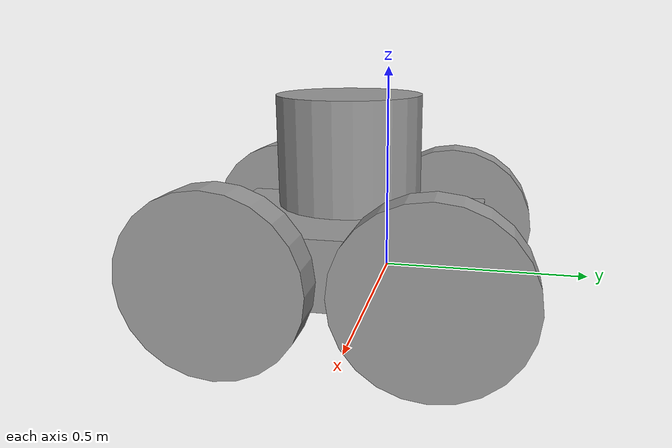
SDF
<?xml version='1.0'?>
<sdf version='1.7'>
  <model name='TankBot'>
    <link name='base'>
      <inertial>
        <mass>1</mass>
        <inertia>
          <ixx>0.166667</ixx>
          <ixy>0</ixy>
          <ixz>0</ixz>
          <iyy>0.166667</iyy>
          <iyz>0</iyz>
          <izz>0.166667</izz>
        </inertia>
        <pose>0 0 0 0 -0 0</pose>
      </inertial>
      <pose>-0.175062 -0.136231 -0.021827 0 -0 0</pose>
      <gravity>1</gravity>
      <self_collide>0</self_collide>
      <kinematic>0</kinematic>
      <enable_wind>0</enable_wind>
      <visual name='visual'>
        <pose>0 0 0 0 -0 0</pose>
        <geometry>
          <box>
            <size>0.5 0.75 0.2</size>
          </box>
        </geometry>
        <material>
          <lighting>1</lighting>
          <script>
            <uri>file://media/materials/scripts/gazebo.material</uri>
            <name>Gazebo/Grey</name>
          </script>
          <shader type='pixel'>
            <normal_map>__default__</normal_map>
          </shader>
          <ambient>0.3 0.3 0.3 1</ambient>
          <diffuse>0.7 0.7 0.7 1</diffuse>
          <specular>0.01 0.01 0.01 1</specular>
          <emissive>0 0 0 1</emissive>
        </material>
        <transparency>0</transparency>
        <cast_shadows>1</cast_shadows>
      </visual>
      <collision name='collision'>
        <laser_retro>0</laser_retro>
        <max_contacts>10</max_contacts>
        <pose>0 0 0 0 -0 0</pose>
        <geometry>
          <box>
            <size>0.5 0.75 0.2</size>
          </box>
        </geometry>
        <surface>
          <friction>
            <ode>
              <mu>1</mu>
              <mu2>1</mu2>
              <fdir1>0 0 0</fdir1>
              <slip1>0</slip1>
              <slip2>0</slip2>
            </ode>
            <torsional>
              <coefficient>1</coefficient>
              <patch_radius>0</patch_radius>
              <surface_radius>0</surface_radius>
              <use_patch_radius>1</use_patch_radius>
              <ode>
                <slip>0</slip>
              </ode>
            </torsional>
          </friction>
          <bounce>
            <restitution_coefficient>0</restitution_coefficient>
            <threshold>1e+06</threshold>
          </bounce>
          <contact>
            <collide_without_contact>0</collide_without_contact>
            <collide_without_contact_bitmask>1</collide_without_contact_bitmask>
            <collide_bitmask>1</collide_bitmask>
            <ode>
              <soft_cfm>0</soft_cfm>
              <soft_erp>0.2</soft_erp>
              <kp>1e+13</kp>
              <kd>1</kd>
              <max_vel>0.01</max_vel>
              <min_depth>0</min_depth>
            </ode>
            <bullet>
              <split_impulse>1</split_impulse>
              <split_impulse_penetration_threshold>-0.01</split_impulse_penetration_threshold>
              <soft_cfm>0</soft_cfm>
              <soft_erp>0.2</soft_erp>
              <kp>1e+13</kp>
              <kd>1</kd>
            </bullet>
          </contact>
        </surface>
      </collision>
    </link>
    <link name='wheel1'>
      <inertial>
        <mass>1</mass>
        <inertia>
          <ixx>0.145833</ixx>
          <ixy>0</ixy>
          <ixz>0</ixz>
          <iyy>0.145833</iyy>
          <iyz>0</iyz>
          <izz>0.125</izz>
        </inertia>
        <pose>0 0 0 0 -0 0</pose>
      </inertial>
      <pose>-0.498422 0.135429 -0.024491 -3.14159 1.56906 -3.14159</pose>
      <gravity>1</gravity>
      <self_collide>0</self_collide>
      <kinematic>0</kinematic>
      <enable_wind>0</enable_wind>
      <visual name='visual'>
        <pose>0 0 0 0 -0 0</pose>
        <geometry>
          <cylinder>
            <radius>0.25</radius>
            <length>0.1</length>
          </cylinder>
        </geometry>
        <material>
          <lighting>1</lighting>
          <script>
            <uri>file://media/materials/scripts/gazebo.material</uri>
            <name>Gazebo/Grey</name>
          </script>
          <shader type='pixel'>
            <normal_map>__default__</normal_map>
          </shader>
          <ambient>0.3 0.3 0.3 1</ambient>
          <diffuse>0.7 0.7 0.7 1</diffuse>
          <specular>0.01 0.01 0.01 1</specular>
          <emissive>0 0 0 1</emissive>
        </material>
        <transparency>0</transparency>
        <cast_shadows>1</cast_shadows>
      </visual>
      <collision name='collision'>
        <laser_retro>0</laser_retro>
        <max_contacts>10</max_contacts>
        <pose>0 0 0 0 -0 0</pose>
        <geometry>
          <cylinder>
            <radius>0.25</radius>
            <length>0.1</length>
          </cylinder>
        </geometry>
        <surface>
          <friction>
            <ode>
              <mu>1</mu>
              <mu2>1</mu2>
              <fdir1>0 0 0</fdir1>
              <slip1>0</slip1>
              <slip2>0</slip2>
            </ode>
            <torsional>
              <coefficient>1</coefficient>
              <patch_radius>0</patch_radius>
              <surface_radius>0</surface_radius>
              <use_patch_radius>1</use_patch_radius>
              <ode>
                <slip>0</slip>
              </ode>
            </torsional>
          </friction>
          <bounce>
            <restitution_coefficient>0</restitution_coefficient>
            <threshold>1e+06</threshold>
          </bounce>
          <contact>
            <collide_without_contact>0</collide_without_contact>
            <collide_without_contact_bitmask>1</collide_without_contact_bitmask>
            <collide_bitmask>1</collide_bitmask>
            <ode>
              <soft_cfm>0</soft_cfm>
              <soft_erp>0.2</soft_erp>
              <kp>1e+13</kp>
              <kd>1</kd>
              <max_vel>0.01</max_vel>
              <min_depth>0</min_depth>
            </ode>
            <bullet>
              <split_impulse>1</split_impulse>
              <split_impulse_penetration_threshold>-0.01</split_impulse_penetration_threshold>
              <soft_cfm>0</soft_cfm>
              <soft_erp>0.2</soft_erp>
              <kp>1e+13</kp>
              <kd>1</kd>
            </bullet>
          </contact>
        </surface>
      </collision>
    </link>
    <link name='wheel2'>
      <inertial>
        <mass>1</mass>
        <inertia>
          <ixx>0.145833</ixx>
          <ixy>0</ixy>
          <ixz>0</ixz>
          <iyy>0.145833</iyy>
          <iyz>0</iyz>
          <izz>0.125</izz>
        </inertia>
        <pose>0 0 0 0 -0 0</pose>
      </inertial>
      <pose>-0.498422 -0.413914 -0.024491 -3.14159 1.56906 -3.14159</pose>
      <gravity>1</gravity>
      <self_collide>0</self_collide>
      <kinematic>0</kinematic>
      <enable_wind>0</enable_wind>
      <visual name='visual'>
        <pose>0 0 0 0 -0 0</pose>
        <geometry>
          <cylinder>
            <radius>0.25</radius>
            <length>0.1</length>
          </cylinder>
        </geometry>
        <material>
          <lighting>1</lighting>
          <script>
            <uri>file://media/materials/scripts/gazebo.material</uri>
            <name>Gazebo/Grey</name>
          </script>
          <shader type='pixel'>
            <normal_map>__default__</normal_map>
          </shader>
          <ambient>0.3 0.3 0.3 1</ambient>
          <diffuse>0.7 0.7 0.7 1</diffuse>
          <specular>0.01 0.01 0.01 1</specular>
          <emissive>0 0 0 1</emissive>
        </material>
        <transparency>0</transparency>
        <cast_shadows>1</cast_shadows>
      </visual>
      <collision name='collision'>
        <laser_retro>0</laser_retro>
        <max_contacts>10</max_contacts>
        <pose>0 0 0 0 -0 0</pose>
        <geometry>
          <cylinder>
            <radius>0.25</radius>
            <length>0.1</length>
          </cylinder>
        </geometry>
        <surface>
          <friction>
            <ode>
              <mu>1</mu>
              <mu2>1</mu2>
              <fdir1>0 0 0</fdir1>
              <slip1>0</slip1>
              <slip2>0</slip2>
            </ode>
            <torsional>
              <coefficient>1</coefficient>
              <patch_radius>0</patch_radius>
              <surface_radius>0</surface_radius>
              <use_patch_radius>1</use_patch_radius>
              <ode>
                <slip>0</slip>
              </ode>
            </torsional>
          </friction>
          <bounce>
            <restitution_coefficient>0</restitution_coefficient>
            <threshold>1e+06</threshold>
          </bounce>
          <contact>
            <collide_without_contact>0</collide_without_contact>
            <collide_without_contact_bitmask>1</collide_without_contact_bitmask>
            <collide_bitmask>1</collide_bitmask>
            <ode>
              <soft_cfm>0</soft_cfm>
              <soft_erp>0.2</soft_erp>
              <kp>1e+13</kp>
              <kd>1</kd>
              <max_vel>0.01</max_vel>
              <min_depth>0</min_depth>
            </ode>
            <bullet>
              <split_impulse>1</split_impulse>
              <split_impulse_penetration_threshold>-0.01</split_impulse_penetration_threshold>
              <soft_cfm>0</soft_cfm>
              <soft_erp>0.2</soft_erp>
              <kp>1e+13</kp>
              <kd>1</kd>
            </bullet>
          </contact>
        </surface>
      </collision>
    </link>
    <link name='wheel3'>
      <inertial>
        <mass>1</mass>
        <inertia>
          <ixx>0.145833</ixx>
          <ixy>0</ixy>
          <ixz>0</ixz>
          <iyy>0.145833</iyy>
          <iyz>0</iyz>
          <izz>0.125</izz>
        </inertia>
        <pose>0 0 0 0 -0 0</pose>
      </inertial>
      <pose>0.155193 0.135429 -0.024491 -3.14159 1.56906 -3.14159</pose>
      <gravity>1</gravity>
      <self_collide>0</self_collide>
      <kinematic>0</kinematic>
      <enable_wind>0</enable_wind>
      <visual name='visual'>
        <pose>0 0 0 0 -0 0</pose>
        <geometry>
          <cylinder>
            <radius>0.25</radius>
            <length>0.1</length>
          </cylinder>
        </geometry>
        <material>
          <lighting>1</lighting>
          <script>
            <uri>file://media/materials/scripts/gazebo.material</uri>
            <name>Gazebo/Grey</name>
          </script>
          <shader type='pixel'>
            <normal_map>__default__</normal_map>
          </shader>
          <ambient>0.3 0.3 0.3 1</ambient>
          <diffuse>0.7 0.7 0.7 1</diffuse>
          <specular>0.01 0.01 0.01 1</specular>
          <emissive>0 0 0 1</emissive>
        </material>
        <transparency>0</transparency>
        <cast_shadows>1</cast_shadows>
      </visual>
      <collision name='collision'>
        <laser_retro>0</laser_retro>
        <max_contacts>10</max_contacts>
        <pose>0 0 0 0 -0 0</pose>
        <geometry>
          <cylinder>
            <radius>0.25</radius>
            <length>0.1</length>
          </cylinder>
        </geometry>
        <surface>
          <friction>
            <ode>
              <mu>1</mu>
              <mu2>1</mu2>
              <fdir1>0 0 0</fdir1>
              <slip1>0</slip1>
              <slip2>0</slip2>
            </ode>
            <torsional>
              <coefficient>1</coefficient>
              <patch_radius>0</patch_radius>
              <surface_radius>0</surface_radius>
              <use_patch_radius>1</use_patch_radius>
              <ode>
                <slip>0</slip>
              </ode>
            </torsional>
          </friction>
          <bounce>
            <restitution_coefficient>0</restitution_coefficient>
            <threshold>1e+06</threshold>
          </bounce>
          <contact>
            <collide_without_contact>0</collide_without_contact>
            <collide_without_contact_bitmask>1</collide_without_contact_bitmask>
            <collide_bitmask>1</collide_bitmask>
            <ode>
              <soft_cfm>0</soft_cfm>
              <soft_erp>0.2</soft_erp>
              <kp>1e+13</kp>
              <kd>1</kd>
              <max_vel>0.01</max_vel>
              <min_depth>0</min_depth>
            </ode>
            <bullet>
              <split_impulse>1</split_impulse>
              <split_impulse_penetration_threshold>-0.01</split_impulse_penetration_threshold>
              <soft_cfm>0</soft_cfm>
              <soft_erp>0.2</soft_erp>
              <kp>1e+13</kp>
              <kd>1</kd>
            </bullet>
          </contact>
        </surface>
      </collision>
    </link>
    <link name='wheel4'>
      <inertial>
        <mass>1</mass>
        <inertia>
          <ixx>0.145833</ixx>
          <ixy>0</ixy>
          <ixz>0</ixz>
          <iyy>0.145833</iyy>
          <iyz>0</iyz>
          <izz>0.125</izz>
        </inertia>
        <pose>0 0 0 0 -0 0</pose>
      </inertial>
      <pose>0.155193 -0.413914 -0.024538 -3.14159 1.56906 -3.14159</pose>
      <gravity>1</gravity>
      <self_collide>0</self_collide>
      <kinematic>0</kinematic>
      <enable_wind>0</enable_wind>
      <visual name='visual'>
        <pose>0 0 0 0 -0 0</pose>
        <geometry>
          <cylinder>
            <radius>0.25</radius>
            <length>0.1</length>
          </cylinder>
        </geometry>
        <material>
          <lighting>1</lighting>
          <script>
            <uri>file://media/materials/scripts/gazebo.material</uri>
            <name>Gazebo/Grey</name>
          </script>
          <shader type='pixel'>
            <normal_map>__default__</normal_map>
          </shader>
          <ambient>0.3 0.3 0.3 1</ambient>
          <diffuse>0.7 0.7 0.7 1</diffuse>
          <specular>0.01 0.01 0.01 1</specular>
          <emissive>0 0 0 1</emissive>
        </material>
        <transparency>0</transparency>
        <cast_shadows>1</cast_shadows>
      </visual>
      <collision name='collision'>
        <laser_retro>0</laser_retro>
        <max_contacts>10</max_contacts>
        <pose>0 0 0 0 -0 0</pose>
        <geometry>
          <cylinder>
            <radius>0.25</radius>
            <length>0.1</length>
          </cylinder>
        </geometry>
        <surface>
          <friction>
            <ode>
              <mu>1</mu>
              <mu2>1</mu2>
              <fdir1>0 0 0</fdir1>
              <slip1>0</slip1>
              <slip2>0</slip2>
            </ode>
            <torsional>
              <coefficient>1</coefficient>
              <patch_radius>0</patch_radius>
              <surface_radius>0</surface_radius>
              <use_patch_radius>1</use_patch_radius>
              <ode>
                <slip>0</slip>
              </ode>
            </torsional>
          </friction>
          <bounce>
            <restitution_coefficient>0</restitution_coefficient>
            <threshold>1e+06</threshold>
          </bounce>
          <contact>
            <collide_without_contact>0</collide_without_contact>
            <collide_without_contact_bitmask>1</collide_without_contact_bitmask>
            <collide_bitmask>1</collide_bitmask>
            <ode>
              <soft_cfm>0</soft_cfm>
              <soft_erp>0.2</soft_erp>
              <kp>1e+13</kp>
              <kd>1</kd>
              <max_vel>0.01</max_vel>
              <min_depth>0</min_depth>
            </ode>
            <bullet>
              <split_impulse>1</split_impulse>
              <split_impulse_penetration_threshold>-0.01</split_impulse_penetration_threshold>
              <soft_cfm>0</soft_cfm>
              <soft_erp>0.2</soft_erp>
              <kp>1e+13</kp>
              <kd>1</kd>
            </bullet>
          </contact>
        </surface>
      </collision>
    </link>
    <link name='turret'>
      <inertial>
        <mass>1</mass>
        <inertia>
          <ixx>0.145833</ixx>
          <ixy>0</ixy>
          <ixz>0</ixz>
          <iyy>0.145833</iyy>
          <iyz>0</iyz>
          <izz>0.125</izz>
        </inertia>
        <pose>0 0 0 0 -0 0</pose>
      </inertial>
      <pose>-0.175063 -0.136232 0.268173 0 -0 0</pose>
      <gravity>1</gravity>
      <self_collide>0</self_collide>
      <kinematic>0</kinematic>
      <enable_wind>0</enable_wind>
      <visual name='visual'>
        <pose>0 0 0 0 -0 0</pose>
        <geometry>
          <cylinder>
            <radius>0.2</radius>
            <length>0.3</length>
          </cylinder>
        </geometry>
        <material>
          <lighting>1</lighting>
          <script>
            <uri>file://media/materials/scripts/gazebo.material</uri>
            <name>Gazebo/Grey</name>
          </script>
          <shader type='pixel'>
            <normal_map>__default__</normal_map>
          </shader>
          <ambient>0.3 0.3 0.3 1</ambient>
          <diffuse>0.7 0.7 0.7 1</diffuse>
          <specular>0.01 0.01 0.01 1</specular>
          <emissive>0 0 0 1</emissive>
        </material>
        <transparency>0</transparency>
        <cast_shadows>1</cast_shadows>
      </visual>
      <collision name='collision'>
        <laser_retro>0</laser_retro>
        <max_contacts>10</max_contacts>
        <pose>0 0 0 0 -0 0</pose>
        <geometry>
          <cylinder>
            <radius>0.2</radius>
            <length>0.3</length>
          </cylinder>
        </geometry>
        <surface>
          <friction>
            <ode>
              <mu>1</mu>
              <mu2>1</mu2>
              <fdir1>0 0 0</fdir1>
              <slip1>0</slip1>
              <slip2>0</slip2>
            </ode>
            <torsional>
              <coefficient>1</coefficient>
              <patch_radius>0</patch_radius>
              <surface_radius>0</surface_radius>
              <use_patch_radius>1</use_patch_radius>
              <ode>
                <slip>0</slip>
              </ode>
            </torsional>
          </friction>
          <bounce>
            <restitution_coefficient>0</restitution_coefficient>
            <threshold>1e+06</threshold>
          </bounce>
          <contact>
            <collide_without_contact>0</collide_without_contact>
            <collide_without_contact_bitmask>1</collide_without_contact_bitmask>
            <collide_bitmask>1</collide_bitmask>
            <ode>
              <soft_cfm>0</soft_cfm>
              <soft_erp>0.2</soft_erp>
              <kp>1e+13</kp>
              <kd>1</kd>
              <max_vel>0.01</max_vel>
              <min_depth>0</min_depth>
            </ode>
            <bullet>
              <split_impulse>1</split_impulse>
              <split_impulse_penetration_threshold>-0.01</split_impulse_penetration_threshold>
              <soft_cfm>0</soft_cfm>
              <soft_erp>0.2</soft_erp>
              <kp>1e+13</kp>
              <kd>1</kd>
            </bullet>
          </contact>
        </surface>
      </collision>
    </link>
    <joint name='Wheel1_axis' type='revolute'>
      <parent>base</parent>
      <child>wheel1</child>
      <pose>0 0 0 0 -0 0</pose>
      <axis>
        <xyz>1 0 0</xyz>
        <limit>
          <lower>-1.79769e+308</lower>
          <upper>1.79769e+308</upper>
          <effort>-1</effort>
          <velocity>-1</velocity>
        </limit>
        <dynamics>
          <spring_reference>0</spring_reference>
          <spring_stiffness>0</spring_stiffness>
          <damping>0</damping>
          <friction>0</friction>
        </dynamics>
      </axis>
      <physics>
        <ode>
          <limit>
            <cfm>0</cfm>
            <erp>0.2</erp>
          </limit>
          <suspension>
            <cfm>0</cfm>
            <erp>0.2</erp>
          </suspension>
        </ode>
      </physics>
    </joint>
    <joint name='Wheel2_axis' type='revolute'>
      <parent>base</parent>
      <child>wheel2</child>
      <pose>0 0 0 0 -0 0</pose>
      <axis>
        <xyz>1 0 0</xyz>
        <limit>
          <lower>-1.79769e+308</lower>
          <upper>1.79769e+308</upper>
          <effort>-1</effort>
          <velocity>-1</velocity>
        </limit>
        <dynamics>
          <spring_reference>0</spring_reference>
          <spring_stiffness>0</spring_stiffness>
          <damping>0</damping>
          <friction>0</friction>
        </dynamics>
      </axis>
      <physics>
        <ode>
          <limit>
            <cfm>0</cfm>
            <erp>0.2</erp>
          </limit>
          <suspension>
            <cfm>0</cfm>
            <erp>0.2</erp>
          </suspension>
        </ode>
      </physics>
    </joint>
    <joint name='Wheel3_axis' type='revolute'>
      <parent>base</parent>
      <child>wheel3</child>
      <pose>0 0 0 0 -0 0</pose>
      <axis>
        <xyz>1 0 0</xyz>
        <limit>
          <lower>-1.79769e+308</lower>
          <upper>1.79769e+308</upper>
          <effort>-1</effort>
          <velocity>-1</velocity>
        </limit>
        <dynamics>
          <spring_reference>0</spring_reference>
          <spring_stiffness>0</spring_stiffness>
          <damping>0</damping>
          <friction>0</friction>
        </dynamics>
      </axis>
      <physics>
        <ode>
          <limit>
            <cfm>0</cfm>
            <erp>0.2</erp>
          </limit>
          <suspension>
            <cfm>0</cfm>
            <erp>0.2</erp>
          </suspension>
        </ode>
      </physics>
    </joint>
    <joint name='Wheel4_axis' type='revolute'>
      <parent>base</parent>
      <child>wheel4</child>
      <pose>0 0 0 0 -0 0</pose>
      <axis>
        <xyz>1 0 0</xyz>
        <limit>
          <lower>-1.79769e+308</lower>
          <upper>1.79769e+308</upper>
          <effort>-1</effort>
          <velocity>-1</velocity>
        </limit>
        <dynamics>
          <spring_reference>0</spring_reference>
          <spring_stiffness>0</spring_stiffness>
          <damping>0</damping>
          <friction>0</friction>
        </dynamics>
      </axis>
      <physics>
        <ode>
          <limit>
            <cfm>0</cfm>
            <erp>0.2</erp>
          </limit>
          <suspension>
            <cfm>0</cfm>
            <erp>0.2</erp>
          </suspension>
        </ode>
      </physics>
    </joint>
    <joint name='Turret_axis' type='revolute'>
      <parent>base</parent>
      <child>turret</child>
      <pose>0 0 0 0 -0 0</pose>
      <axis>
        <xyz>0 1 0</xyz>
        <limit>
          <lower>-1.79769e+308</lower>
          <upper>1.79769e+308</upper>
          <effort>-1</effort>
          <velocity>-1</velocity>
        </limit>
        <dynamics>
          <spring_reference>0</spring_reference>
          <spring_stiffness>0</spring_stiffness>
          <damping>0</damping>
          <friction>0</friction>
        </dynamics>
      </axis>
      <physics>
        <ode>
          <limit>
            <cfm>0</cfm>
            <erp>0.2</erp>
          </limit>
          <suspension>
            <cfm>0</cfm>
            <erp>0.2</erp>
          </suspension>
        </ode>
      </physics>
    </joint>
    <static>0</static>
    <allow_auto_disable>1</allow_auto_disable>
  </model>
</sdf>
